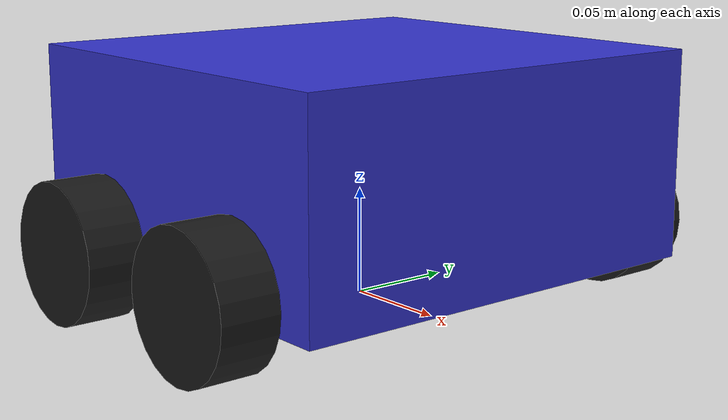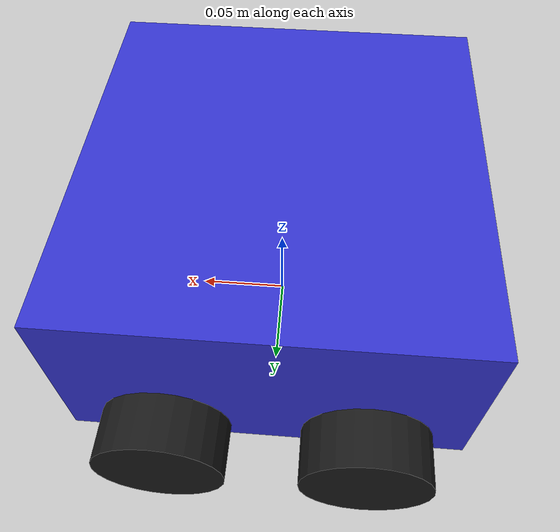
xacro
<?xml version="1.0"?>

<robot xmlns:xacro="http://www.ros.org/wiki/xacro" >

  <!-- ROS2 Control Plugins-->
  <xacro:include filename="$(find autonomous_rover)/description/ros2_control.xacro"/>

  <!-- Base footprint - ground reference -->
   <link name="base_footprint"/>

  <joint name="base_joint" type="fixed">
    <parent link="base_footprint"/>
    <child link="base_link"/>
    <origin xyz="0 0 0.06825" rpy="0 0 0"/>
  </joint>

  <link name="base_link">
    <visual>
      <origin xyz="0 0 0.0" rpy="0 0 0"/>
      <geometry>
        <box size="0.2 0.211 0.0965"/>
      </geometry>
      <material name="blue">
        <color rgba="0.2 0.2 0.8 1.0"/>
      </material>
    </visual>

    <collision>
      <origin xyz="0 0 0" rpy="0 0 0"/>
      <geometry>
        <box size="0.2 0.15 0.045"/>
      </geometry>
    </collision>

    <inertial>
      <origin xyz="0 0 0" rpy="0 0 0"/>
      <mass value="5.0"/>
      <inertia ixx="0.0306" iyy="0.0881" izz="0.1151"
               ixy="0" ixz="0" iyz="0"/>
    </inertial>
  </link>

  <!-- Front Left Wheel -->
  <joint name="front_left_wheel_joint" type="continuous">
    <parent link="base_link"/>
    <child link="front_left_wheel"/>
    <origin xyz="0.05 0.119 -0.03825" rpy="0 0 0"/>
    <axis xyz="0 1 0"/>
  </joint>

  <link name="front_left_wheel">
    <visual>
      <origin xyz="0 0 0" rpy="1.5708 0 0"/>
      <geometry>
        <cylinder radius="0.0325" length="0.027"/>
      </geometry>
      <material name="wheel_color">
        <color rgba="0.1 0.1 0.1 1.0"/>
      </material>
    </visual>

    <collision>
      <origin xyz="0 0 0" rpy="1.5708 0 0"/>
      <geometry>
        <cylinder radius="0.0325" length="0.027"/>
      </geometry>
    </collision>

    <inertial>
      <origin xyz="0 0 0" rpy="1.5708 0 0"/>
      <mass value="0.01"/>
      <inertia ixx="0.000001" iyy="0.000001" izz="0.000001"
               ixy="0" ixz="0" iyz="0"/>
    </inertial>
  </link>

  <!-- Front Right Wheel -->
  <joint name="front_right_wheel_joint" type="continuous">
    <parent link="base_link"/>
    <child link="front_right_wheel"/>
    <origin xyz="0.05 -0.119 -0.03825" rpy="0 0 0"/>
    <axis xyz="0 1 0"/>
  </joint>

  <link name="front_right_wheel">
    <visual>
      <origin xyz="0 0 0" rpy="1.5708 0 0"/>
      <geometry>
        <cylinder radius="0.0325" length="0.027"/>
      </geometry>
      <material name="wheel_color">
        <color rgba="0.1 0.1 0.1 1.0"/>
      </material>
    </visual>

    <collision>
      <origin xyz="0 0 0" rpy="1.5708 0 0"/>
      <geometry>
        <cylinder radius="0.0325" length="0.027"/>
      </geometry>
    </collision>

    <inertial>
      <origin xyz="0 0 0" rpy="1.5708 0 0"/>
      <mass value="0.01"/>
      <inertia ixx="0.000001" iyy="0.000001" izz="0.000001"
               ixy="0" ixz="0" iyz="0"/>
    </inertial>
  </link>

  <!-- Back Left Wheel -->
  <joint name="back_left_wheel_joint" type="continuous">
    <parent link="base_link"/>
    <child link="back_left_wheel"/>
    <origin xyz="-0.05 0.119 -0.03825" rpy="0 0 0"/>
    <axis xyz="0 1 0"/>
  </joint>

  <link name="back_left_wheel">
    <visual>
      <origin xyz="0 0 0" rpy="1.5708 0 0"/>
      <geometry>
        <cylinder radius="0.0325" length="0.027"/>
      </geometry>
      <material name="wheel_color">
        <color rgba="0.1 0.1 0.1 1.0"/>
      </material>
    </visual>

    <collision>
      <origin xyz="0 0 0" rpy="1.5708 0 0"/>
      <geometry>
        <cylinder radius="0.0325" length="0.027"/>
      </geometry>
    </collision>

    <inertial>
      <origin xyz="0 0 0" rpy="1.5708 0 0"/>
      <mass value="0.01"/>
      <inertia ixx="0.000001" iyy="0.000001" izz="0.000001"
               ixy="0" ixz="0" iyz="0"/>
    </inertial>
  </link>

  <!-- Back Right Wheel -->
  <joint name="back_right_wheel_joint" type="continuous">
    <parent link="base_link"/>
    <child link="back_right_wheel"/>
    <origin xyz="-0.05 -0.119 -0.03825" rpy="0 0 0"/>
    <axis xyz="0 1 0"/>
  </joint>

  <link name="back_right_wheel">
    <visual>
      <origin xyz="0 0 0" rpy="1.5708 0 0"/>
      <geometry>
        <cylinder radius="0.0325" length="0.027"/>
      </geometry>
      <material name="wheel_color">
        <color rgba="0.1 0.1 0.1 1.0"/>
      </material>
    </visual>

    <collision>
      <origin xyz="0 0 0" rpy="1.5708 0 0"/>
      <geometry>
        <cylinder radius="0.0325" length="0.027"/>
      </geometry>
    </collision>

    <inertial>
      <origin xyz="0 0 0" rpy="1.5708 0 0"/>
      <mass value="0.01"/>
      <inertia ixx="0.000001" iyy="0.000001" izz="0.000001"
               ixy="0" ixz="0" iyz="0"/>
    </inertial>
  </link>

</robot>
